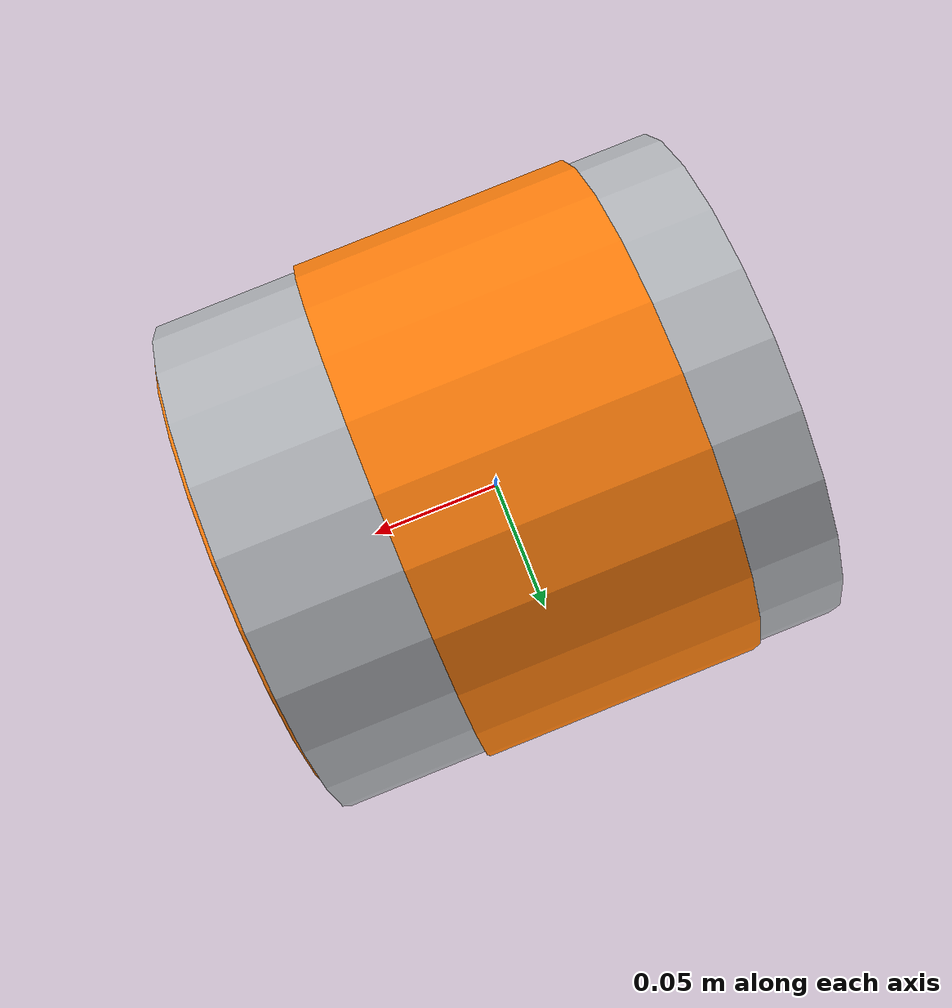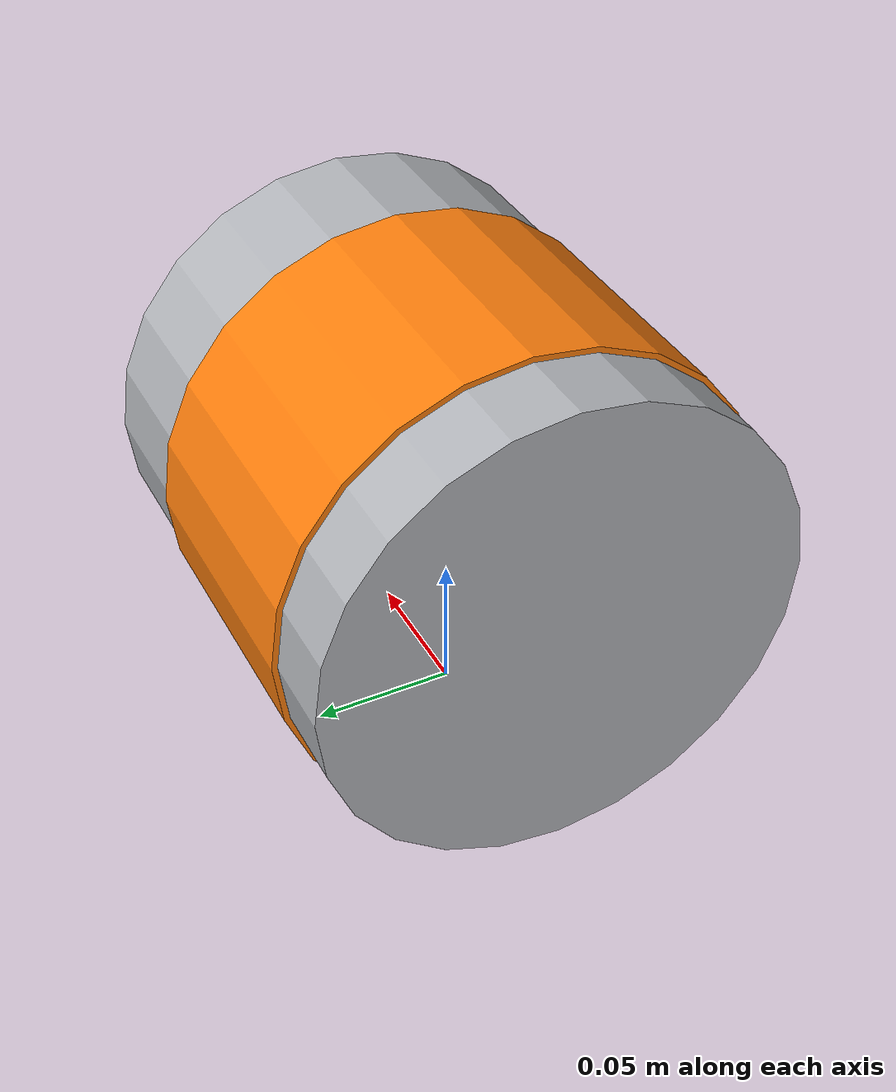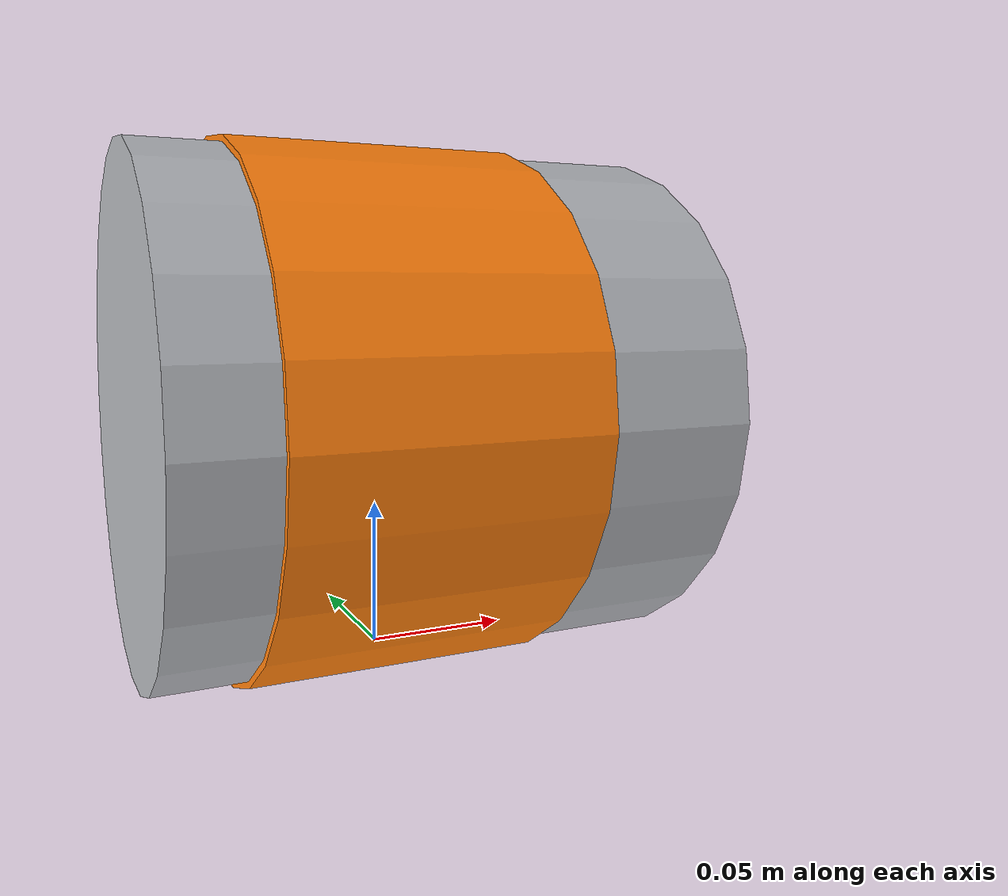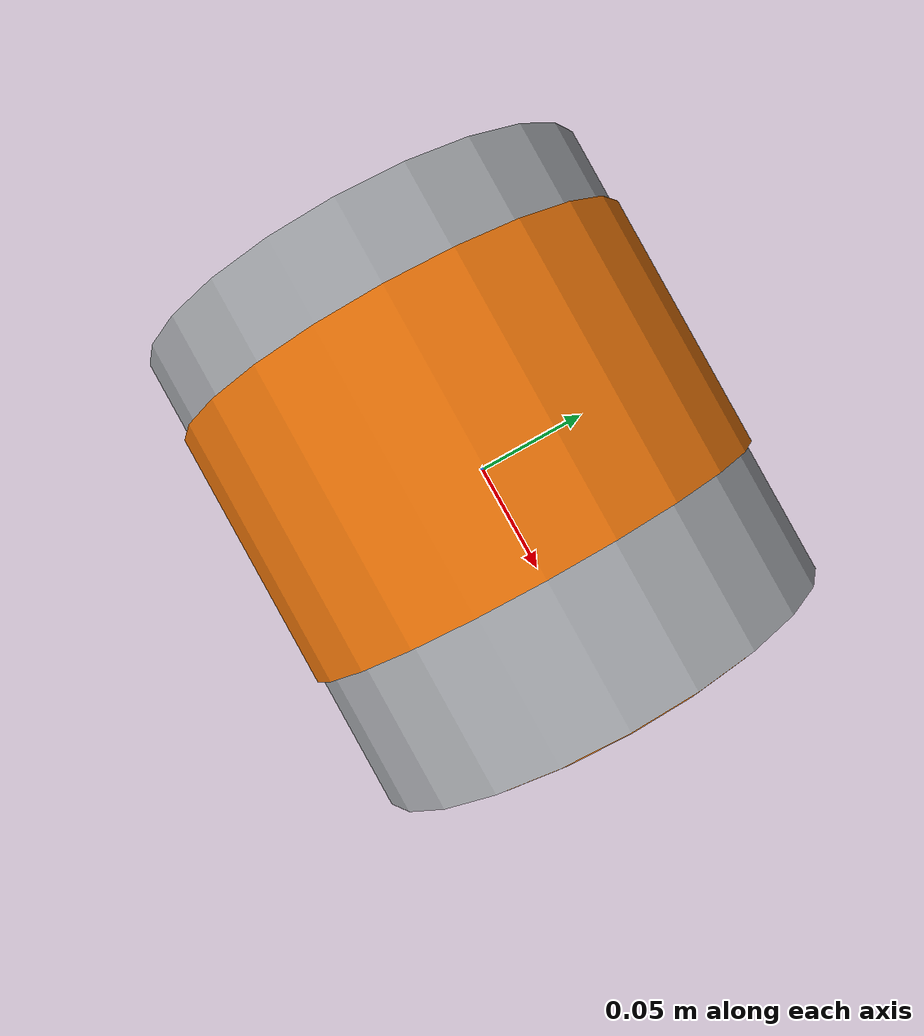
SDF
<?xml version="1.0"?>
<sdf version="1.8">
  <model name="paint_can_orange">
    <static>true</static>
    <link name="link">
      <collision name="can">
        <pose>0 0 0.085 0 1.5708 0</pose>
        <geometry><cylinder><radius>0.085</radius><length>0.17</length></cylinder></geometry>
      </collision>
      <visual name="can">
        <pose>0 0 0.085 0 1.5708 0</pose>
        <geometry><cylinder><radius>0.085</radius><length>0.17</length></cylinder></geometry>
        <material><ambient>0.55 0.56 0.58 1</ambient><diffuse>0.70 0.71 0.73 1</diffuse><specular>0.6 0.6 0.6 1</specular></material>
      </visual>
      <visual name="label">
        <pose>-0.01 0 0.085 0 1.5708 0</pose>
        <geometry><cylinder><radius>0.08700000000000001</radius><length>0.09350000000000001</length></cylinder></geometry>
        <material><ambient>0.80 0.40 0.04 1</ambient><diffuse>1.00 0.50 0.05 1</diffuse><specular>0.3 0.3 0.3 1</specular></material>
      </visual>
      <visual name="paint">
        <pose>0.08600000000000001 0 0.085 0 1.5708 0</pose>
        <geometry><cylinder><radius>0.079</radius><length>0.002</length></cylinder></geometry>
        <material><ambient>0.80 0.40 0.04 1</ambient><diffuse>1.00 0.50 0.05 1</diffuse><specular>0.3 0.3 0.3 1</specular></material>
      </visual>
    </link>
  </model>
</sdf>
